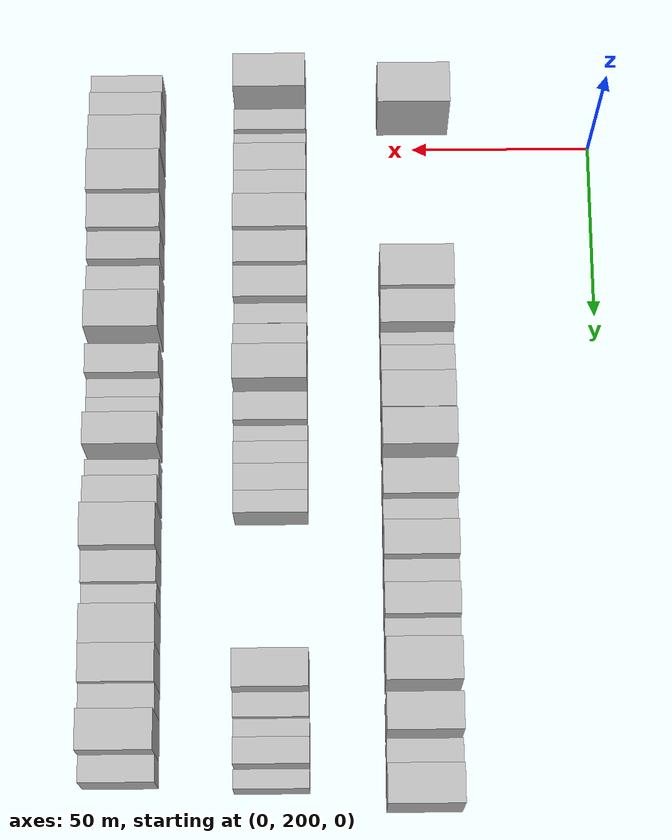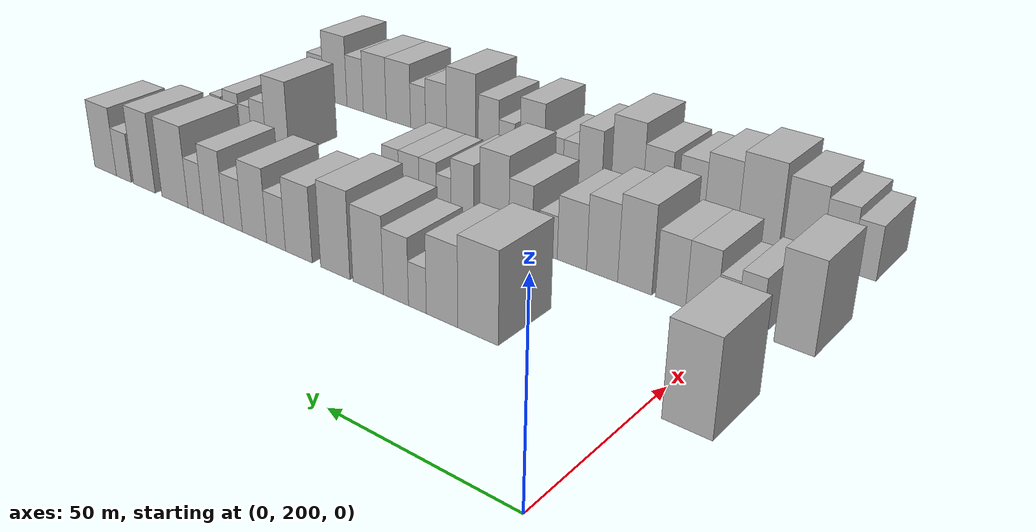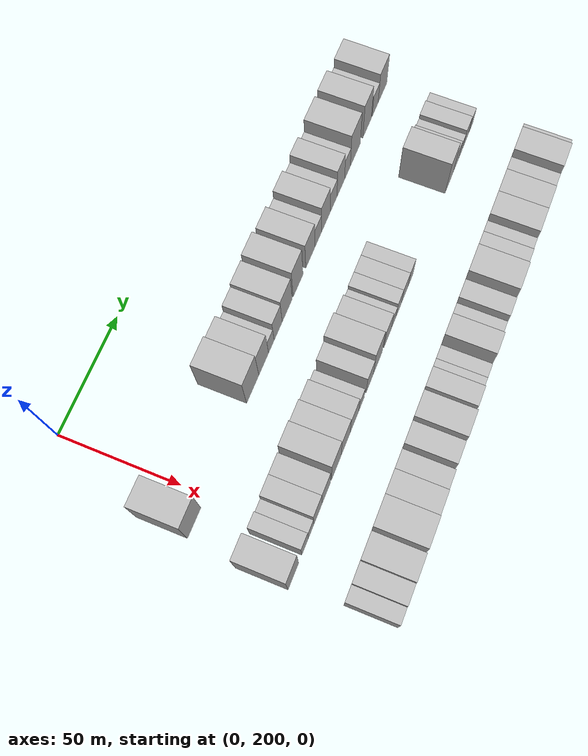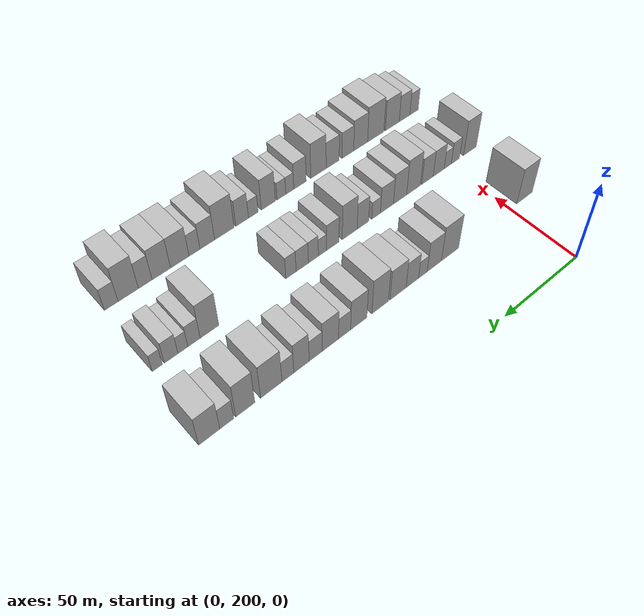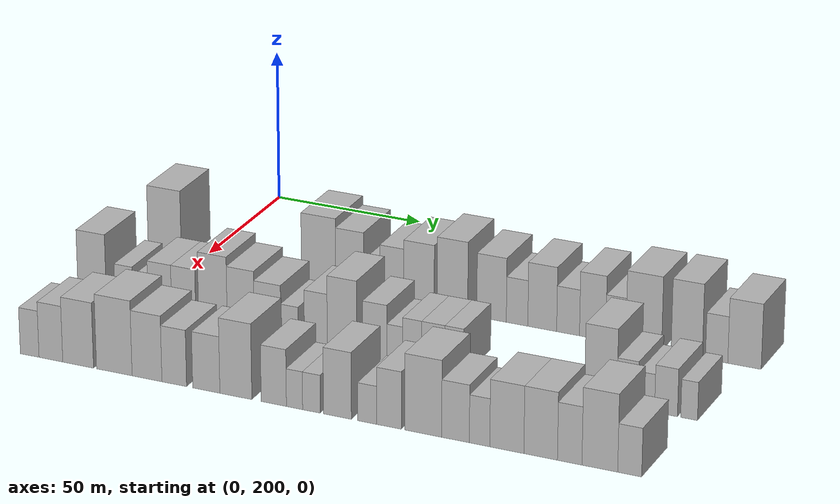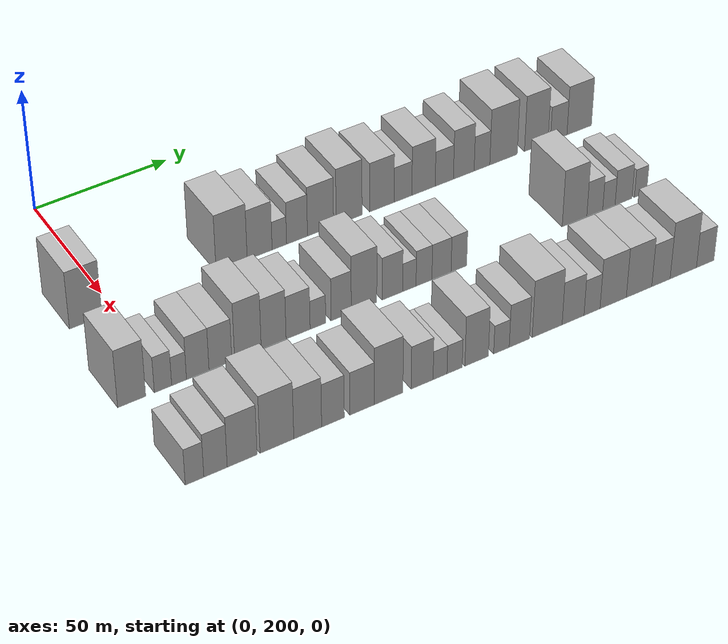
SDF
<sdf version="1.6">
 <world name="default">
  <model name="building_63">
   <static>1</static>
   <pose>50.0000 189.4246 0 0.000000 0.000000 0.000000</pose>
   <link name="link">
    <pose>0 0 12.00 0 0 0</pose>
    <collision name="collision"><geometry><box><size>20.0000 11.6353 24.0000</size></box></geometry></collision>
    <visual name="visual">
     <cast_shadows>0</cast_shadows>
     <geometry><box><size>20.0000 11.6353 24.0000</size></box></geometry>
     <material>
      <script>
       <uri>model://HANNAS_wall/materials/scripts</uri>
       <uri>model://HANNAS_wall/materials/textures</uri>
       <name>vrc/HANNAS_wall</name>
      </script>
     </material>
    </visual>
   </link>
  </model>
  <model name="building_64">
   <static>1</static>
   <pose>50.0000 242.7667 0 0.000000 0.000000 0.000000</pose>
   <link name="link">
    <pose>0 0 12.00 0 0 0</pose>
    <collision name="collision"><geometry><box><size>20.0000 11.6830 24.0000</size></box></geometry></collision>
    <visual name="visual">
     <cast_shadows>0</cast_shadows>
     <geometry><box><size>20.0000 11.6830 24.0000</size></box></geometry>
     <material>
      <script>
       <uri>model://HANNAS_wall/materials/scripts</uri>
       <uri>model://HANNAS_wall/materials/textures</uri>
       <name>vrc/HANNAS_wall</name>
      </script>
     </material>
    </visual>
   </link>
  </model>
  <model name="building_65">
   <static>1</static>
   <pose>50.0000 253.3263 0 0.000000 0.000000 0.000000</pose>
   <link name="link">
    <pose>0 0 10.50 0 0 0</pose>
    <collision name="collision"><geometry><box><size>20.0000 9.4362 21.0000</size></box></geometry></collision>
    <visual name="visual">
     <cast_shadows>0</cast_shadows>
     <geometry><box><size>20.0000 9.4362 21.0000</size></box></geometry>
     <material>
      <script>
       <uri>model://HANNAS_wall/materials/scripts</uri>
       <uri>model://HANNAS_wall/materials/textures</uri>
       <name>vrc/HANNAS_wall</name>
      </script>
     </material>
    </visual>
   </link>
  </model>
  <model name="building_66">
   <static>1</static>
   <pose>50.0000 260.8109 0 0.000000 0.000000 0.000000</pose>
   <link name="link">
    <pose>0 0 6.00 0 0 0</pose>
    <collision name="collision"><geometry><box><size>20.0000 5.5330 12.0000</size></box></geometry></collision>
    <visual name="visual">
     <cast_shadows>0</cast_shadows>
     <geometry><box><size>20.0000 5.5330 12.0000</size></box></geometry>
     <material>
      <script>
       <uri>model://HANNAS_wall/materials/scripts</uri>
       <uri>model://HANNAS_wall/materials/textures</uri>
       <name>vrc/HANNAS_wall</name>
      </script>
     </material>
    </visual>
   </link>
  </model>
  <model name="building_67">
   <static>1</static>
   <pose>50.0000 267.5817 0 0.000000 0.000000 0.000000</pose>
   <link name="link">
    <pose>0 0 9.00 0 0 0</pose>
    <collision name="collision"><geometry><box><size>20.0000 8.0086 18.0000</size></box></geometry></collision>
    <visual name="visual">
     <cast_shadows>0</cast_shadows>
     <geometry><box><size>20.0000 8.0086 18.0000</size></box></geometry>
     <material>
      <script>
       <uri>model://HANNAS_wall/materials/scripts</uri>
       <uri>model://HANNAS_wall/materials/textures</uri>
       <name>vrc/HANNAS_wall</name>
      </script>
     </material>
    </visual>
   </link>
  </model>
  <model name="building_68">
   <static>1</static>
   <pose>50.0000 276.6365 0 0.000000 0.000000 0.000000</pose>
   <link name="link">
    <pose>0 0 10.50 0 0 0</pose>
    <collision name="collision"><geometry><box><size>20.0000 10.1010 21.0000</size></box></geometry></collision>
    <visual name="visual">
     <cast_shadows>0</cast_shadows>
     <geometry><box><size>20.0000 10.1010 21.0000</size></box></geometry>
     <material>
      <script>
       <uri>model://HANNAS_wall/materials/scripts</uri>
       <uri>model://HANNAS_wall/materials/textures</uri>
       <name>vrc/HANNAS_wall</name>
      </script>
     </material>
    </visual>
   </link>
  </model>
  <model name="building_69">
   <static>1</static>
   <pose>50.0000 287.7462 0 0.000000 0.000000 0.000000</pose>
   <link name="link">
    <pose>0 0 12.00 0 0 0</pose>
    <collision name="collision"><geometry><box><size>20.0000 10.1184 24.0000</size></box></geometry></collision>
    <visual name="visual">
     <cast_shadows>0</cast_shadows>
     <geometry><box><size>20.0000 10.1184 24.0000</size></box></geometry>
     <material>
      <script>
       <uri>model://HANNAS_wall/materials/scripts</uri>
       <uri>model://HANNAS_wall/materials/textures</uri>
       <name>vrc/HANNAS_wall</name>
      </script>
     </material>
    </visual>
   </link>
  </model>
  <model name="building_70">
   <static>1</static>
   <pose>50.0000 300.6558 0 0.000000 0.000000 0.000000</pose>
   <link name="link">
    <pose>0 0 10.50 0 0 0</pose>
    <collision name="collision"><geometry><box><size>20.0000 9.7009 21.0000</size></box></geometry></collision>
    <visual name="visual">
     <cast_shadows>0</cast_shadows>
     <geometry><box><size>20.0000 9.7009 21.0000</size></box></geometry>
     <material>
      <script>
       <uri>model://HANNAS_wall/materials/scripts</uri>
       <uri>model://HANNAS_wall/materials/textures</uri>
       <name>vrc/HANNAS_wall</name>
      </script>
     </material>
    </visual>
   </link>
  </model>
  <model name="building_71">
   <static>1</static>
   <pose>50.0000 309.0238 0 0.000000 0.000000 0.000000</pose>
   <link name="link">
    <pose>0 0 7.50 0 0 0</pose>
    <collision name="collision"><geometry><box><size>20.0000 7.0350 15.0000</size></box></geometry></collision>
    <visual name="visual">
     <cast_shadows>0</cast_shadows>
     <geometry><box><size>20.0000 7.0350 15.0000</size></box></geometry>
     <material>
      <script>
       <uri>model://HANNAS_wall/materials/scripts</uri>
       <uri>model://HANNAS_wall/materials/textures</uri>
       <name>vrc/HANNAS_wall</name>
      </script>
     </material>
    </visual>
   </link>
  </model>
  <model name="building_72">
   <static>1</static>
   <pose>50.0000 317.2298 0 0.000000 0.000000 0.000000</pose>
   <link name="link">
    <pose>0 0 10.50 0 0 0</pose>
    <collision name="collision"><geometry><box><size>20.0000 9.3769 21.0000</size></box></geometry></collision>
    <visual name="visual">
     <cast_shadows>0</cast_shadows>
     <geometry><box><size>20.0000 9.3769 21.0000</size></box></geometry>
     <material>
      <script>
       <uri>model://HANNAS_wall/materials/scripts</uri>
       <uri>model://HANNAS_wall/materials/textures</uri>
       <name>vrc/HANNAS_wall</name>
      </script>
     </material>
    </visual>
   </link>
  </model>
  <model name="building_73">
   <static>1</static>
   <pose>50.0000 325.6055 0 0.000000 0.000000 0.000000</pose>
   <link name="link">
    <pose>0 0 7.50 0 0 0</pose>
    <collision name="collision"><geometry><box><size>20.0000 7.3746 15.0000</size></box></geometry></collision>
    <visual name="visual">
     <cast_shadows>0</cast_shadows>
     <geometry><box><size>20.0000 7.3746 15.0000</size></box></geometry>
     <material>
      <script>
       <uri>model://HANNAS_wall/materials/scripts</uri>
       <uri>model://HANNAS_wall/materials/textures</uri>
       <name>vrc/HANNAS_wall</name>
      </script>
     </material>
    </visual>
   </link>
  </model>
  <model name="building_74">
   <static>1</static>
   <pose>50.0000 333.5196 0 0.000000 0.000000 0.000000</pose>
   <link name="link">
    <pose>0 0 10.50 0 0 0</pose>
    <collision name="collision"><geometry><box><size>20.0000 8.4535 21.0000</size></box></geometry></collision>
    <visual name="visual">
     <cast_shadows>0</cast_shadows>
     <geometry><box><size>20.0000 8.4535 21.0000</size></box></geometry>
     <material>
      <script>
       <uri>model://HANNAS_wall/materials/scripts</uri>
       <uri>model://HANNAS_wall/materials/textures</uri>
       <name>vrc/HANNAS_wall</name>
      </script>
     </material>
    </visual>
   </link>
  </model>
  <model name="building_75">
   <static>1</static>
   <pose>50.0000 340.9676 0 0.000000 0.000000 0.000000</pose>
   <link name="link">
    <pose>0 0 7.50 0 0 0</pose>
    <collision name="collision"><geometry><box><size>20.0000 6.4425 15.0000</size></box></geometry></collision>
    <visual name="visual">
     <cast_shadows>0</cast_shadows>
     <geometry><box><size>20.0000 6.4425 15.0000</size></box></geometry>
     <material>
      <script>
       <uri>model://HANNAS_wall/materials/scripts</uri>
       <uri>model://HANNAS_wall/materials/textures</uri>
       <name>vrc/HANNAS_wall</name>
      </script>
     </material>
    </visual>
   </link>
  </model>
  <model name="building_76">
   <static>1</static>
   <pose>50.0000 349.8723 0 0.000000 0.000000 0.000000</pose>
   <link name="link">
    <pose>0 0 12.00 0 0 0</pose>
    <collision name="collision"><geometry><box><size>20.0000 11.3668 24.0000</size></box></geometry></collision>
    <visual name="visual">
     <cast_shadows>0</cast_shadows>
     <geometry><box><size>20.0000 11.3668 24.0000</size></box></geometry>
     <material>
      <script>
       <uri>model://HANNAS_wall/materials/scripts</uri>
       <uri>model://HANNAS_wall/materials/textures</uri>
       <name>vrc/HANNAS_wall</name>
      </script>
     </material>
    </visual>
   </link>
  </model>
  <model name="building_77">
   <static>1</static>
   <pose>50.0000 363.4788 0 0.000000 0.000000 0.000000</pose>
   <link name="link">
    <pose>0 0 12.00 0 0 0</pose>
    <collision name="collision"><geometry><box><size>20.0000 9.8463 24.0000</size></box></geometry></collision>
    <visual name="visual">
     <cast_shadows>0</cast_shadows>
     <geometry><box><size>20.0000 9.8463 24.0000</size></box></geometry>
     <material>
      <script>
       <uri>model://HANNAS_wall/materials/scripts</uri>
       <uri>model://HANNAS_wall/materials/textures</uri>
       <name>vrc/HANNAS_wall</name>
      </script>
     </material>
    </visual>
   </link>
  </model>
  <model name="building_78">
   <static>1</static>
   <pose>50.0000 372.9017 0 0.000000 0.000000 0.000000</pose>
   <link name="link">
    <pose>0 0 7.50 0 0 0</pose>
    <collision name="collision"><geometry><box><size>20.0000 6.9996 15.0000</size></box></geometry></collision>
    <visual name="visual">
     <cast_shadows>0</cast_shadows>
     <geometry><box><size>20.0000 6.9996 15.0000</size></box></geometry>
     <material>
      <script>
       <uri>model://HANNAS_wall/materials/scripts</uri>
       <uri>model://HANNAS_wall/materials/textures</uri>
       <name>vrc/HANNAS_wall</name>
      </script>
     </material>
    </visual>
   </link>
  </model>
  <model name="building_79">
   <static>1</static>
   <pose>50.0000 381.6183 0 0.000000 0.000000 0.000000</pose>
   <link name="link">
    <pose>0 0 10.50 0 0 0</pose>
    <collision name="collision"><geometry><box><size>20.0000 10.4335 21.0000</size></box></geometry></collision>
    <visual name="visual">
     <cast_shadows>0</cast_shadows>
     <geometry><box><size>20.0000 10.4335 21.0000</size></box></geometry>
     <material>
      <script>
       <uri>model://HANNAS_wall/materials/scripts</uri>
       <uri>model://HANNAS_wall/materials/textures</uri>
       <name>vrc/HANNAS_wall</name>
      </script>
     </material>
    </visual>
   </link>
  </model>
  <model name="building_143">
   <static>1</static>
   <pose>90.0000 185.4093 0 0.000000 0.000000 0.000000</pose>
   <link name="link">
    <pose>0 0 12.00 0 0 0</pose>
    <collision name="collision"><geometry><box><size>20.0000 9.7700 24.0000</size></box></geometry></collision>
    <visual name="visual">
     <cast_shadows>0</cast_shadows>
     <geometry><box><size>20.0000 9.7700 24.0000</size></box></geometry>
     <material>
      <script>
       <uri>model://HANNAS_wall/materials/scripts</uri>
       <uri>model://HANNAS_wall/materials/textures</uri>
       <name>vrc/HANNAS_wall</name>
      </script>
     </material>
    </visual>
   </link>
  </model>
  <model name="building_144">
   <static>1</static>
   <pose>90.0000 196.3484 0 0.000000 0.000000 0.000000</pose>
   <link name="link">
    <pose>0 0 7.50 0 0 0</pose>
    <collision name="collision"><geometry><box><size>20.0000 6.1082 15.0000</size></box></geometry></collision>
    <visual name="visual">
     <cast_shadows>0</cast_shadows>
     <geometry><box><size>20.0000 6.1082 15.0000</size></box></geometry>
     <material>
      <script>
       <uri>model://HANNAS_wall/materials/scripts</uri>
       <uri>model://HANNAS_wall/materials/textures</uri>
       <name>vrc/HANNAS_wall</name>
      </script>
     </material>
    </visual>
   </link>
  </model>
  <model name="building_145">
   <static>1</static>
   <pose>90.0000 202.0118 0 0.000000 0.000000 0.000000</pose>
   <link name="link">
    <pose>0 0 6.00 0 0 0</pose>
    <collision name="collision"><geometry><box><size>20.0000 5.2185 12.0000</size></box></geometry></collision>
    <visual name="visual">
     <cast_shadows>0</cast_shadows>
     <geometry><box><size>20.0000 5.2185 12.0000</size></box></geometry>
     <material>
      <script>
       <uri>model://HANNAS_wall/materials/scripts</uri>
       <uri>model://HANNAS_wall/materials/textures</uri>
       <name>vrc/HANNAS_wall</name>
      </script>
     </material>
    </visual>
   </link>
  </model>
  <model name="building_146">
   <static>1</static>
   <pose>90.0000 208.6279 0 0.000000 0.000000 0.000000</pose>
   <link name="link">
    <pose>0 0 9.00 0 0 0</pose>
    <collision name="collision"><geometry><box><size>20.0000 8.0138 18.0000</size></box></geometry></collision>
    <visual name="visual">
     <cast_shadows>0</cast_shadows>
     <geometry><box><size>20.0000 8.0138 18.0000</size></box></geometry>
     <material>
      <script>
       <uri>model://HANNAS_wall/materials/scripts</uri>
       <uri>model://HANNAS_wall/materials/textures</uri>
       <name>vrc/HANNAS_wall</name>
      </script>
     </material>
    </visual>
   </link>
  </model>
  <model name="building_147">
   <static>1</static>
   <pose>90.0000 216.7188 0 0.000000 0.000000 0.000000</pose>
   <link name="link">
    <pose>0 0 9.00 0 0 0</pose>
    <collision name="collision"><geometry><box><size>20.0000 8.1680 18.0000</size></box></geometry></collision>
    <visual name="visual">
     <cast_shadows>0</cast_shadows>
     <geometry><box><size>20.0000 8.1680 18.0000</size></box></geometry>
     <material>
      <script>
       <uri>model://HANNAS_wall/materials/scripts</uri>
       <uri>model://HANNAS_wall/materials/textures</uri>
       <name>vrc/HANNAS_wall</name>
      </script>
     </material>
    </visual>
   </link>
  </model>
  <model name="building_148">
   <static>1</static>
   <pose>90.0000 226.6118 0 0.000000 0.000000 0.000000</pose>
   <link name="link">
    <pose>0 0 12.00 0 0 0</pose>
    <collision name="collision"><geometry><box><size>20.0000 9.6180 24.0000</size></box></geometry></collision>
    <visual name="visual">
     <cast_shadows>0</cast_shadows>
     <geometry><box><size>20.0000 9.6180 24.0000</size></box></geometry>
     <material>
      <script>
       <uri>model://HANNAS_wall/materials/scripts</uri>
       <uri>model://HANNAS_wall/materials/textures</uri>
       <name>vrc/HANNAS_wall</name>
      </script>
     </material>
    </visual>
   </link>
  </model>
  <model name="building_149">
   <static>1</static>
   <pose>90.0000 235.9561 0 0.000000 0.000000 0.000000</pose>
   <link name="link">
    <pose>0 0 10.50 0 0 0</pose>
    <collision name="collision"><geometry><box><size>20.0000 9.0705 21.0000</size></box></geometry></collision>
    <visual name="visual">
     <cast_shadows>0</cast_shadows>
     <geometry><box><size>20.0000 9.0705 21.0000</size></box></geometry>
     <material>
      <script>
       <uri>model://HANNAS_wall/materials/scripts</uri>
       <uri>model://HANNAS_wall/materials/textures</uri>
       <name>vrc/HANNAS_wall</name>
      </script>
     </material>
    </visual>
   </link>
  </model>
  <model name="building_150">
   <static>1</static>
   <pose>90.0000 244.9120 0 0.000000 0.000000 0.000000</pose>
   <link name="link">
    <pose>0 0 9.00 0 0 0</pose>
    <collision name="collision"><geometry><box><size>20.0000 8.8412 18.0000</size></box></geometry></collision>
    <visual name="visual">
     <cast_shadows>0</cast_shadows>
     <geometry><box><size>20.0000 8.8412 18.0000</size></box></geometry>
     <material>
      <script>
       <uri>model://HANNAS_wall/materials/scripts</uri>
       <uri>model://HANNAS_wall/materials/textures</uri>
       <name>vrc/HANNAS_wall</name>
      </script>
     </material>
    </visual>
   </link>
  </model>
  <model name="building_151">
   <static>1</static>
   <pose>90.0000 252.2291 0 0.000000 0.000000 0.000000</pose>
   <link name="link">
    <pose>0 0 6.00 0 0 0</pose>
    <collision name="collision"><geometry><box><size>20.0000 5.7929 12.0000</size></box></geometry></collision>
    <visual name="visual">
     <cast_shadows>0</cast_shadows>
     <geometry><box><size>20.0000 5.7929 12.0000</size></box></geometry>
     <material>
      <script>
       <uri>model://HANNAS_wall/materials/scripts</uri>
       <uri>model://HANNAS_wall/materials/textures</uri>
       <name>vrc/HANNAS_wall</name>
      </script>
     </material>
    </visual>
   </link>
  </model>
  <model name="building_152">
   <static>1</static>
   <pose>90.0000 260.8935 0 0.000000 0.000000 0.000000</pose>
   <link name="link">
    <pose>0 0 9.00 0 0 0</pose>
    <collision name="collision"><geometry><box><size>20.0000 7.5360 18.0000</size></box></geometry></collision>
    <visual name="visual">
     <cast_shadows>0</cast_shadows>
     <geometry><box><size>20.0000 7.5360 18.0000</size></box></geometry>
     <material>
      <script>
       <uri>model://HANNAS_wall/materials/scripts</uri>
       <uri>model://HANNAS_wall/materials/textures</uri>
       <name>vrc/HANNAS_wall</name>
      </script>
     </material>
    </visual>
   </link>
  </model>
  <model name="building_153">
   <static>1</static>
   <pose>90.0000 269.4720 0 0.000000 0.000000 0.000000</pose>
   <link name="link">
    <pose>0 0 12.00 0 0 0</pose>
    <collision name="collision"><geometry><box><size>20.0000 9.6209 24.0000</size></box></geometry></collision>
    <visual name="visual">
     <cast_shadows>0</cast_shadows>
     <geometry><box><size>20.0000 9.6209 24.0000</size></box></geometry>
     <material>
      <script>
       <uri>model://HANNAS_wall/materials/scripts</uri>
       <uri>model://HANNAS_wall/materials/textures</uri>
       <name>vrc/HANNAS_wall</name>
      </script>
     </material>
    </visual>
   </link>
  </model>
  <model name="building_154">
   <static>1</static>
   <pose>90.0000 280.2066 0 0.000000 0.000000 0.000000</pose>
   <link name="link">
    <pose>0 0 9.00 0 0 0</pose>
    <collision name="collision"><geometry><box><size>20.0000 7.8484 18.0000</size></box></geometry></collision>
    <visual name="visual">
     <cast_shadows>0</cast_shadows>
     <geometry><box><size>20.0000 7.8484 18.0000</size></box></geometry>
     <material>
      <script>
       <uri>model://HANNAS_wall/materials/scripts</uri>
       <uri>model://HANNAS_wall/materials/textures</uri>
       <name>vrc/HANNAS_wall</name>
      </script>
     </material>
    </visual>
   </link>
  </model>
  <model name="building_155">
   <static>1</static>
   <pose>90.0000 286.6881 0 0.000000 0.000000 0.000000</pose>
   <link name="link">
    <pose>0 0 6.00 0 0 0</pose>
    <collision name="collision"><geometry><box><size>20.0000 5.1146 12.0000</size></box></geometry></collision>
    <visual name="visual">
     <cast_shadows>0</cast_shadows>
     <geometry><box><size>20.0000 5.1146 12.0000</size></box></geometry>
     <material>
      <script>
       <uri>model://HANNAS_wall/materials/scripts</uri>
       <uri>model://HANNAS_wall/materials/textures</uri>
       <name>vrc/HANNAS_wall</name>
      </script>
     </material>
    </visual>
   </link>
  </model>
  <model name="building_156">
   <static>1</static>
   <pose>90.0000 292.3081 0 0.000000 0.000000 0.000000</pose>
   <link name="link">
    <pose>0 0 7.50 0 0 0</pose>
    <collision name="collision"><geometry><box><size>20.0000 6.1253 15.0000</size></box></geometry></collision>
    <visual name="visual">
     <cast_shadows>0</cast_shadows>
     <geometry><box><size>20.0000 6.1253 15.0000</size></box></geometry>
     <material>
      <script>
       <uri>model://HANNAS_wall/materials/scripts</uri>
       <uri>model://HANNAS_wall/materials/textures</uri>
       <name>vrc/HANNAS_wall</name>
      </script>
     </material>
    </visual>
   </link>
  </model>
  <model name="building_157">
   <static>1</static>
   <pose>90.0000 299.0788 0 0.000000 0.000000 0.000000</pose>
   <link name="link">
    <pose>0 0 7.50 0 0 0</pose>
    <collision name="collision"><geometry><box><size>20.0000 7.4162 15.0000</size></box></geometry></collision>
    <visual name="visual">
     <cast_shadows>0</cast_shadows>
     <geometry><box><size>20.0000 7.4162 15.0000</size></box></geometry>
     <material>
      <script>
       <uri>model://HANNAS_wall/materials/scripts</uri>
       <uri>model://HANNAS_wall/materials/textures</uri>
       <name>vrc/HANNAS_wall</name>
      </script>
     </material>
    </visual>
   </link>
  </model>
  <model name="building_158">
   <static>1</static>
   <pose>90.0000 305.8366 0 0.000000 0.000000 0.000000</pose>
   <link name="link">
    <pose>0 0 7.50 0 0 0</pose>
    <collision name="collision"><geometry><box><size>20.0000 6.0993 15.0000</size></box></geometry></collision>
    <visual name="visual">
     <cast_shadows>0</cast_shadows>
     <geometry><box><size>20.0000 6.0993 15.0000</size></box></geometry>
     <material>
      <script>
       <uri>model://HANNAS_wall/materials/scripts</uri>
       <uri>model://HANNAS_wall/materials/textures</uri>
       <name>vrc/HANNAS_wall</name>
      </script>
     </material>
    </visual>
   </link>
  </model>
  <model name="building_159">
   <static>1</static>
   <pose>90.0000 351.9342 0 0.000000 0.000000 0.000000</pose>
   <link name="link">
    <pose>0 0 12.00 0 0 0</pose>
    <collision name="collision"><geometry><box><size>20.0000 10.0320 24.0000</size></box></geometry></collision>
    <visual name="visual">
     <cast_shadows>0</cast_shadows>
     <geometry><box><size>20.0000 10.0320 24.0000</size></box></geometry>
     <material>
      <script>
       <uri>model://HANNAS_wall/materials/scripts</uri>
       <uri>model://HANNAS_wall/materials/textures</uri>
       <name>vrc/HANNAS_wall</name>
      </script>
     </material>
    </visual>
   </link>
  </model>
  <model name="building_160">
   <static>1</static>
   <pose>90.0000 360.2070 0 0.000000 0.000000 0.000000</pose>
   <link name="link">
    <pose>0 0 7.50 0 0 0</pose>
    <collision name="collision"><geometry><box><size>20.0000 6.5137 15.0000</size></box></geometry></collision>
    <visual name="visual">
     <cast_shadows>0</cast_shadows>
     <geometry><box><size>20.0000 6.5137 15.0000</size></box></geometry>
     <material>
      <script>
       <uri>model://HANNAS_wall/materials/scripts</uri>
       <uri>model://HANNAS_wall/materials/textures</uri>
       <name>vrc/HANNAS_wall</name>
      </script>
     </material>
    </visual>
   </link>
  </model>
  <model name="building_161">
   <static>1</static>
   <pose>90.0000 366.0211 0 0.000000 0.000000 0.000000</pose>
   <link name="link">
    <pose>0 0 6.00 0 0 0</pose>
    <collision name="collision"><geometry><box><size>20.0000 5.1144 12.0000</size></box></geometry></collision>
    <visual name="visual">
     <cast_shadows>0</cast_shadows>
     <geometry><box><size>20.0000 5.1144 12.0000</size></box></geometry>
     <material>
      <script>
       <uri>model://HANNAS_wall/materials/scripts</uri>
       <uri>model://HANNAS_wall/materials/textures</uri>
       <name>vrc/HANNAS_wall</name>
      </script>
     </material>
    </visual>
   </link>
  </model>
  <model name="building_162">
   <static>1</static>
   <pose>90.0000 372.0828 0 0.000000 0.000000 0.000000</pose>
   <link name="link">
    <pose>0 0 7.50 0 0 0</pose>
    <collision name="collision"><geometry><box><size>20.0000 7.0091 15.0000</size></box></geometry></collision>
    <visual name="visual">
     <cast_shadows>0</cast_shadows>
     <geometry><box><size>20.0000 7.0091 15.0000</size></box></geometry>
     <material>
      <script>
       <uri>model://HANNAS_wall/materials/scripts</uri>
       <uri>model://HANNAS_wall/materials/textures</uri>
       <name>vrc/HANNAS_wall</name>
      </script>
     </material>
    </visual>
   </link>
  </model>
  <model name="building_163">
   <static>1</static>
   <pose>90.0000 379.1480 0 0.000000 0.000000 0.000000</pose>
   <link name="link">
    <pose>0 0 6.00 0 0 0</pose>
    <collision name="collision"><geometry><box><size>20.0000 5.1215 12.0000</size></box></geometry></collision>
    <visual name="visual">
     <cast_shadows>0</cast_shadows>
     <geometry><box><size>20.0000 5.1215 12.0000</size></box></geometry>
     <material>
      <script>
       <uri>model://HANNAS_wall/materials/scripts</uri>
       <uri>model://HANNAS_wall/materials/textures</uri>
       <name>vrc/HANNAS_wall</name>
      </script>
     </material>
    </visual>
   </link>
  </model>
  <model name="building_219">
   <static>1</static>
   <pose>130.0000 186.0148 0 0.000000 0.000000 0.000000</pose>
   <link name="link">
    <pose>0 0 7.50 0 0 0</pose>
    <collision name="collision"><geometry><box><size>20.0000 6.3233 15.0000</size></box></geometry></collision>
    <visual name="visual">
     <cast_shadows>0</cast_shadows>
     <geometry><box><size>20.0000 6.3233 15.0000</size></box></geometry>
     <material>
      <script>
       <uri>model://HANNAS_wall/materials/scripts</uri>
       <uri>model://HANNAS_wall/materials/textures</uri>
       <name>vrc/HANNAS_wall</name>
      </script>
     </material>
    </visual>
   </link>
  </model>
  <model name="building_220">
   <static>1</static>
   <pose>130.0000 193.1736 0 0.000000 0.000000 0.000000</pose>
   <link name="link">
    <pose>0 0 9.00 0 0 0</pose>
    <collision name="collision"><geometry><box><size>20.0000 7.9942 18.0000</size></box></geometry></collision>
    <visual name="visual">
     <cast_shadows>0</cast_shadows>
     <geometry><box><size>20.0000 7.9942 18.0000</size></box></geometry>
     <material>
      <script>
       <uri>model://HANNAS_wall/materials/scripts</uri>
       <uri>model://HANNAS_wall/materials/textures</uri>
       <name>vrc/HANNAS_wall</name>
      </script>
     </material>
    </visual>
   </link>
  </model>
  <model name="building_221">
   <static>1</static>
   <pose>130.0000 202.3313 0 0.000000 0.000000 0.000000</pose>
   <link name="link">
    <pose>0 0 10.50 0 0 0</pose>
    <collision name="collision"><geometry><box><size>20.0000 10.3213 21.0000</size></box></geometry></collision>
    <visual name="visual">
     <cast_shadows>0</cast_shadows>
     <geometry><box><size>20.0000 10.3213 21.0000</size></box></geometry>
     <material>
      <script>
       <uri>model://HANNAS_wall/materials/scripts</uri>
       <uri>model://HANNAS_wall/materials/textures</uri>
       <name>vrc/HANNAS_wall</name>
      </script>
     </material>
    </visual>
   </link>
  </model>
  <model name="building_222">
   <static>1</static>
   <pose>130.0000 214.4001 0 0.000000 0.000000 0.000000</pose>
   <link name="link">
    <pose>0 0 12.00 0 0 0</pose>
    <collision name="collision"><geometry><box><size>20.0000 11.8163 24.0000</size></box></geometry></collision>
    <visual name="visual">
     <cast_shadows>0</cast_shadows>
     <geometry><box><size>20.0000 11.8163 24.0000</size></box></geometry>
     <material>
      <script>
       <uri>model://HANNAS_wall/materials/scripts</uri>
       <uri>model://HANNAS_wall/materials/textures</uri>
       <name>vrc/HANNAS_wall</name>
      </script>
     </material>
    </visual>
   </link>
  </model>
  <model name="building_223">
   <static>1</static>
   <pose>130.0000 225.2316 0 0.000000 0.000000 0.000000</pose>
   <link name="link">
    <pose>0 0 10.50 0 0 0</pose>
    <collision name="collision"><geometry><box><size>20.0000 9.8469 21.0000</size></box></geometry></collision>
    <visual name="visual">
     <cast_shadows>0</cast_shadows>
     <geometry><box><size>20.0000 9.8469 21.0000</size></box></geometry>
     <material>
      <script>
       <uri>model://HANNAS_wall/materials/scripts</uri>
       <uri>model://HANNAS_wall/materials/textures</uri>
       <name>vrc/HANNAS_wall</name>
      </script>
     </material>
    </visual>
   </link>
  </model>
  <model name="building_224">
   <static>1</static>
   <pose>130.0000 234.2003 0 0.000000 0.000000 0.000000</pose>
   <link name="link">
    <pose>0 0 9.00 0 0 0</pose>
    <collision name="collision"><geometry><box><size>20.0000 8.0904 18.0000</size></box></geometry></collision>
    <visual name="visual">
     <cast_shadows>0</cast_shadows>
     <geometry><box><size>20.0000 8.0904 18.0000</size></box></geometry>
     <material>
      <script>
       <uri>model://HANNAS_wall/materials/scripts</uri>
       <uri>model://HANNAS_wall/materials/textures</uri>
       <name>vrc/HANNAS_wall</name>
      </script>
     </material>
    </visual>
   </link>
  </model>
  <model name="building_225">
   <static>1</static>
   <pose>130.0000 244.6678 0 0.000000 0.000000 0.000000</pose>
   <link name="link">
    <pose>0 0 9.00 0 0 0</pose>
    <collision name="collision"><geometry><box><size>20.0000 8.8447 18.0000</size></box></geometry></collision>
    <visual name="visual">
     <cast_shadows>0</cast_shadows>
     <geometry><box><size>20.0000 8.8447 18.0000</size></box></geometry>
     <material>
      <script>
       <uri>model://HANNAS_wall/materials/scripts</uri>
       <uri>model://HANNAS_wall/materials/textures</uri>
       <name>vrc/HANNAS_wall</name>
      </script>
     </material>
    </visual>
   </link>
  </model>
  <model name="building_226">
   <static>1</static>
   <pose>130.0000 254.2675 0 0.000000 0.000000 0.000000</pose>
   <link name="link">
    <pose>0 0 12.00 0 0 0</pose>
    <collision name="collision"><geometry><box><size>20.0000 10.3547 24.0000</size></box></geometry></collision>
    <visual name="visual">
     <cast_shadows>0</cast_shadows>
     <geometry><box><size>20.0000 10.3547 24.0000</size></box></geometry>
     <material>
      <script>
       <uri>model://HANNAS_wall/materials/scripts</uri>
       <uri>model://HANNAS_wall/materials/textures</uri>
       <name>vrc/HANNAS_wall</name>
      </script>
     </material>
    </visual>
   </link>
  </model>
  <model name="building_227">
   <static>1</static>
   <pose>130.0000 266.4917 0 0.000000 0.000000 0.000000</pose>
   <link name="link">
    <pose>0 0 9.00 0 0 0</pose>
    <collision name="collision"><geometry><box><size>20.0000 8.0936 18.0000</size></box></geometry></collision>
    <visual name="visual">
     <cast_shadows>0</cast_shadows>
     <geometry><box><size>20.0000 8.0936 18.0000</size></box></geometry>
     <material>
      <script>
       <uri>model://HANNAS_wall/materials/scripts</uri>
       <uri>model://HANNAS_wall/materials/textures</uri>
       <name>vrc/HANNAS_wall</name>
      </script>
     </material>
    </visual>
   </link>
  </model>
  <model name="building_228">
   <static>1</static>
   <pose>130.0000 273.1276 0 0.000000 0.000000 0.000000</pose>
   <link name="link">
    <pose>0 0 6.00 0 0 0</pose>
    <collision name="collision"><geometry><box><size>20.0000 5.1781 12.0000</size></box></geometry></collision>
    <visual name="visual">
     <cast_shadows>0</cast_shadows>
     <geometry><box><size>20.0000 5.1781 12.0000</size></box></geometry>
     <material>
      <script>
       <uri>model://HANNAS_wall/materials/scripts</uri>
       <uri>model://HANNAS_wall/materials/textures</uri>
       <name>vrc/HANNAS_wall</name>
      </script>
     </material>
    </visual>
   </link>
  </model>
  <model name="building_229">
   <static>1</static>
   <pose>130.0000 278.5444 0 0.000000 0.000000 0.000000</pose>
   <link name="link">
    <pose>0 0 6.00 0 0 0</pose>
    <collision name="collision"><geometry><box><size>20.0000 5.6556 12.0000</size></box></geometry></collision>
    <visual name="visual">
     <cast_shadows>0</cast_shadows>
     <geometry><box><size>20.0000 5.6556 12.0000</size></box></geometry>
     <material>
      <script>
       <uri>model://HANNAS_wall/materials/scripts</uri>
       <uri>model://HANNAS_wall/materials/textures</uri>
       <name>vrc/HANNAS_wall</name>
      </script>
     </material>
    </visual>
   </link>
  </model>
  <model name="building_230">
   <static>1</static>
   <pose>130.0000 286.7852 0 0.000000 0.000000 0.000000</pose>
   <link name="link">
    <pose>0 0 10.50 0 0 0</pose>
    <collision name="collision"><geometry><box><size>20.0000 8.8261 21.0000</size></box></geometry></collision>
    <visual name="visual">
     <cast_shadows>0</cast_shadows>
     <geometry><box><size>20.0000 8.8261 21.0000</size></box></geometry>
     <material>
      <script>
       <uri>model://HANNAS_wall/materials/scripts</uri>
       <uri>model://HANNAS_wall/materials/textures</uri>
       <name>vrc/HANNAS_wall</name>
      </script>
     </material>
    </visual>
   </link>
  </model>
  <model name="building_231">
   <static>1</static>
   <pose>130.0000 296.1507 0 0.000000 0.000000 0.000000</pose>
   <link name="link">
    <pose>0 0 6.00 0 0 0</pose>
    <collision name="collision"><geometry><box><size>20.0000 5.9049 12.0000</size></box></geometry></collision>
    <visual name="visual">
     <cast_shadows>0</cast_shadows>
     <geometry><box><size>20.0000 5.9049 12.0000</size></box></geometry>
     <material>
      <script>
       <uri>model://HANNAS_wall/materials/scripts</uri>
       <uri>model://HANNAS_wall/materials/textures</uri>
       <name>vrc/HANNAS_wall</name>
      </script>
     </material>
    </visual>
   </link>
  </model>
  <model name="building_232">
   <static>1</static>
   <pose>130.0000 302.9852 0 0.000000 0.000000 0.000000</pose>
   <link name="link">
    <pose>0 0 9.00 0 0 0</pose>
    <collision name="collision"><geometry><box><size>20.0000 7.7640 18.0000</size></box></geometry></collision>
    <visual name="visual">
     <cast_shadows>0</cast_shadows>
     <geometry><box><size>20.0000 7.7640 18.0000</size></box></geometry>
     <material>
      <script>
       <uri>model://HANNAS_wall/materials/scripts</uri>
       <uri>model://HANNAS_wall/materials/textures</uri>
       <name>vrc/HANNAS_wall</name>
      </script>
     </material>
    </visual>
   </link>
  </model>
  <model name="building_233">
   <static>1</static>
   <pose>130.0000 313.6407 0 0.000000 0.000000 0.000000</pose>
   <link name="link">
    <pose>0 0 12.00 0 0 0</pose>
    <collision name="collision"><geometry><box><size>20.0000 11.5470 24.0000</size></box></geometry></collision>
    <visual name="visual">
     <cast_shadows>0</cast_shadows>
     <geometry><box><size>20.0000 11.5470 24.0000</size></box></geometry>
     <material>
      <script>
       <uri>model://HANNAS_wall/materials/scripts</uri>
       <uri>model://HANNAS_wall/materials/textures</uri>
       <name>vrc/HANNAS_wall</name>
      </script>
     </material>
    </visual>
   </link>
  </model>
  <model name="building_234">
   <static>1</static>
   <pose>130.0000 323.6791 0 0.000000 0.000000 0.000000</pose>
   <link name="link">
    <pose>0 0 9.00 0 0 0</pose>
    <collision name="collision"><geometry><box><size>20.0000 8.5300 18.0000</size></box></geometry></collision>
    <visual name="visual">
     <cast_shadows>0</cast_shadows>
     <geometry><box><size>20.0000 8.5300 18.0000</size></box></geometry>
     <material>
      <script>
       <uri>model://HANNAS_wall/materials/scripts</uri>
       <uri>model://HANNAS_wall/materials/textures</uri>
       <name>vrc/HANNAS_wall</name>
      </script>
     </material>
    </visual>
   </link>
  </model>
  <model name="building_235">
   <static>1</static>
   <pose>130.0000 331.0851 0 0.000000 0.000000 0.000000</pose>
   <link name="link">
    <pose>0 0 7.50 0 0 0</pose>
    <collision name="collision"><geometry><box><size>20.0000 6.2819 15.0000</size></box></geometry></collision>
    <visual name="visual">
     <cast_shadows>0</cast_shadows>
     <geometry><box><size>20.0000 6.2819 15.0000</size></box></geometry>
     <material>
      <script>
       <uri>model://HANNAS_wall/materials/scripts</uri>
       <uri>model://HANNAS_wall/materials/textures</uri>
       <name>vrc/HANNAS_wall</name>
      </script>
     </material>
    </visual>
   </link>
  </model>
  <model name="building_236">
   <static>1</static>
   <pose>130.0000 339.4264 0 0.000000 0.000000 0.000000</pose>
   <link name="link">
    <pose>0 0 10.50 0 0 0</pose>
    <collision name="collision"><geometry><box><size>20.0000 10.4007 21.0000</size></box></geometry></collision>
    <visual name="visual">
     <cast_shadows>0</cast_shadows>
     <geometry><box><size>20.0000 10.4007 21.0000</size></box></geometry>
     <material>
      <script>
       <uri>model://HANNAS_wall/materials/scripts</uri>
       <uri>model://HANNAS_wall/materials/textures</uri>
       <name>vrc/HANNAS_wall</name>
      </script>
     </material>
    </visual>
   </link>
  </model>
  <model name="building_237">
   <static>1</static>
   <pose>130.0000 349.7117 0 0.000000 0.000000 0.000000</pose>
   <link name="link">
    <pose>0 0 10.50 0 0 0</pose>
    <collision name="collision"><geometry><box><size>20.0000 10.1700 21.0000</size></box></geometry></collision>
    <visual name="visual">
     <cast_shadows>0</cast_shadows>
     <geometry><box><size>20.0000 10.1700 21.0000</size></box></geometry>
     <material>
      <script>
       <uri>model://HANNAS_wall/materials/scripts</uri>
       <uri>model://HANNAS_wall/materials/textures</uri>
       <name>vrc/HANNAS_wall</name>
      </script>
     </material>
    </visual>
   </link>
  </model>
  <model name="building_238">
   <static>1</static>
   <pose>130.0000 358.4830 0 0.000000 0.000000 0.000000</pose>
   <link name="link">
    <pose>0 0 9.00 0 0 0</pose>
    <collision name="collision"><geometry><box><size>20.0000 7.3726 18.0000</size></box></geometry></collision>
    <visual name="visual">
     <cast_shadows>0</cast_shadows>
     <geometry><box><size>20.0000 7.3726 18.0000</size></box></geometry>
     <material>
      <script>
       <uri>model://HANNAS_wall/materials/scripts</uri>
       <uri>model://HANNAS_wall/materials/textures</uri>
       <name>vrc/HANNAS_wall</name>
      </script>
     </material>
    </visual>
   </link>
  </model>
  <model name="building_239">
   <static>1</static>
   <pose>130.0000 367.5229 0 0.000000 0.000000 0.000000</pose>
   <link name="link">
    <pose>0 0 12.00 0 0 0</pose>
    <collision name="collision"><geometry><box><size>20.0000 10.7073 24.0000</size></box></geometry></collision>
    <visual name="visual">
     <cast_shadows>0</cast_shadows>
     <geometry><box><size>20.0000 10.7073 24.0000</size></box></geometry>
     <material>
      <script>
       <uri>model://HANNAS_wall/materials/scripts</uri>
       <uri>model://HANNAS_wall/materials/textures</uri>
       <name>vrc/HANNAS_wall</name>
      </script>
     </material>
    </visual>
   </link>
  </model>
  <model name="building_240">
   <static>1</static>
   <pose>130.0000 376.4535 0 0.000000 0.000000 0.000000</pose>
   <link name="link">
    <pose>0 0 7.50 0 0 0</pose>
    <collision name="collision"><geometry><box><size>20.0000 7.1539 15.0000</size></box></geometry></collision>
    <visual name="visual">
     <cast_shadows>0</cast_shadows>
     <geometry><box><size>20.0000 7.1539 15.0000</size></box></geometry>
     <material>
      <script>
       <uri>model://HANNAS_wall/materials/scripts</uri>
       <uri>model://HANNAS_wall/materials/textures</uri>
       <name>vrc/HANNAS_wall</name>
      </script>
     </material>
    </visual>
   </link>
  </model>
 </world>
</sdf>
